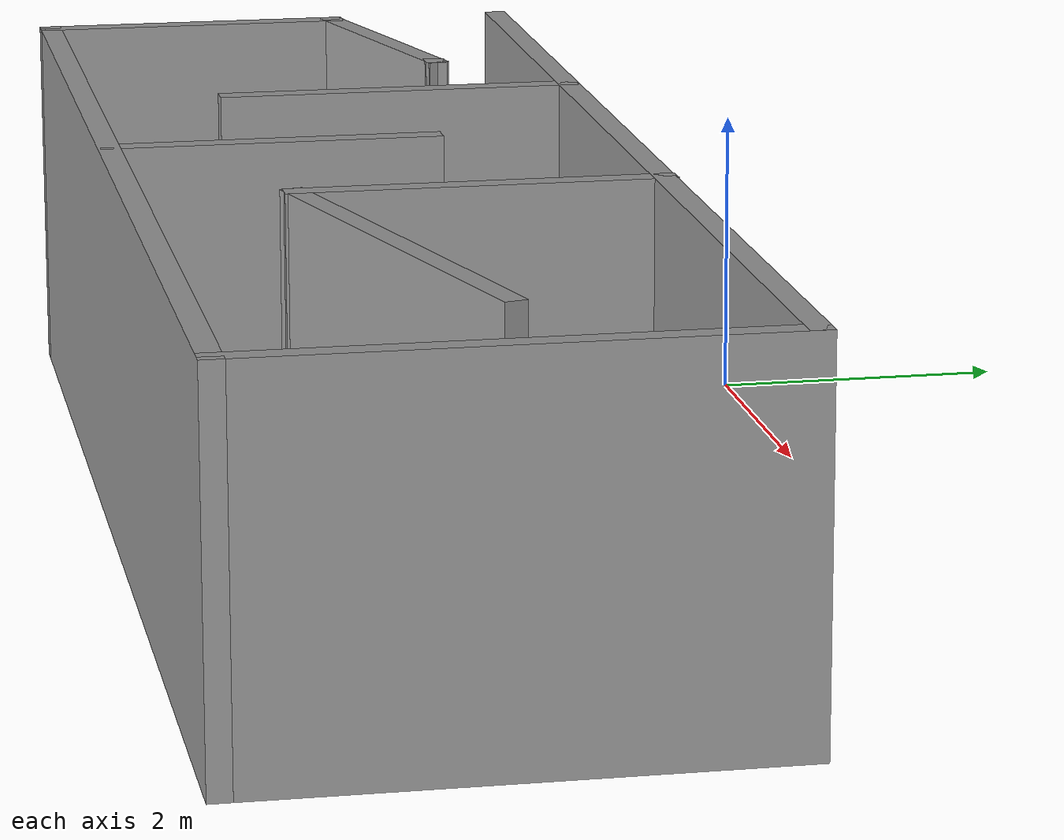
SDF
<?xml version='1.0'?>
<sdf version='1.6'>
  <model name='simple_maze'>
    <pose frame=''>3.12657 -3.05 0 0 -0 0</pose>
    <link name='Wall_0'>
      <collision name='Wall_0_Collision'>
        <geometry>
          <box>
            <size>10 0.15 2.5</size>
          </box>
        </geometry>
        <pose frame=''>0 0 1.25 0 -0 0</pose>
      </collision>
      <visual name='Wall_0_Visual'>
        <pose frame=''>0 0 1.25 0 -0 0</pose>
        <geometry>
          <box>
            <size>10 0.15 2.5</size>
          </box>
        </geometry>
        <material>
          <script>
            <uri>file://media/materials/scripts/gazebo.material</uri>
            <name>Gazebo/Grey</name>
          </script>
          <ambient>1 1 1 1</ambient>
        </material>
        <meta>
          <layer>0</layer>
        </meta>
      </visual>
      <pose frame=''>0.008428 1.67 0 0 -0 0</pose>
    </link>
    <link name='Wall_1'>
      <collision name='Wall_1_Collision'>
        <geometry>
          <box>
            <size>3.5 0.15 2.5</size>
          </box>
        </geometry>
        <pose frame=''>0 0 1.25 0 -0 0</pose>
      </collision>
      <visual name='Wall_1_Visual'>
        <pose frame=''>0 0 1.25 0 -0 0</pose>
        <geometry>
          <box>
            <size>3.5 0.15 2.5</size>
          </box>
        </geometry>
        <material>
          <script>
            <uri>file://media/materials/scripts/gazebo.material</uri>
            <name>Gazebo/Grey</name>
          </script>
          <ambient>1 1 1 1</ambient>
        </material>
        <meta>
          <layer>0</layer>
        </meta>
      </visual>
      <pose frame=''>4.93343 -0.005 0 0 -0 -1.5708</pose>
    </link>
    <link name='Wall_11'>
      <collision name='Wall_11_Collision'>
        <geometry>
          <box>
            <size>2.5 0.15 2.5</size>
          </box>
        </geometry>
        <pose frame=''>0 0 1.25 0 -0 0</pose>
      </collision>
      <visual name='Wall_11_Visual'>
        <pose frame=''>0 0 1.25 0 -0 0</pose>
        <geometry>
          <box>
            <size>2.5 0.15 2.5</size>
          </box>
        </geometry>
        <material>
          <script>
            <uri>file://media/materials/scripts/gazebo.material</uri>
            <name>Gazebo/Grey</name>
          </script>
          <ambient>1 1 1 1</ambient>
        </material>
        <meta>
          <layer>0</layer>
        </meta>
      </visual>
      <pose frame=''>0.963428 0.505 0 0 -0 -1.5708</pose>
    </link>
    <link name='Wall_12'>
      <collision name='Wall_12_Collision'>
        <geometry>
          <box>
            <size>3.25 0.15 2.5</size>
          </box>
        </geometry>
        <pose frame=''>0 0 1.25 0 -0 0</pose>
      </collision>
      <visual name='Wall_12_Visual'>
        <pose frame=''>0 0 1.25 0 -0 0</pose>
        <geometry>
          <box>
            <size>3.25 0.15 2.5</size>
          </box>
        </geometry>
        <material>
          <script>
            <uri>file://media/materials/scripts/gazebo.material</uri>
            <name>Gazebo/Grey</name>
          </script>
          <ambient>1 1 1 1</ambient>
        </material>
        <meta>
          <layer>0</layer>
        </meta>
      </visual>
      <pose frame=''>2.46061 -0.26883 0 0 -0 0.261799</pose>
    </link>
    <link name='Wall_2'>
      <collision name='Wall_2_Collision'>
        <geometry>
          <box>
            <size>10 0.15 2.5</size>
          </box>
        </geometry>
        <pose frame=''>0 0 1.25 0 -0 0</pose>
      </collision>
      <visual name='Wall_2_Visual'>
        <pose frame=''>0 0 1.25 0 -0 0</pose>
        <geometry>
          <box>
            <size>10 0.15 2.5</size>
          </box>
        </geometry>
        <material>
          <script>
            <uri>file://media/materials/scripts/gazebo.material</uri>
            <name>Gazebo/Grey</name>
          </script>
          <ambient>1 1 1 1</ambient>
        </material>
        <meta>
          <layer>0</layer>
        </meta>
      </visual>
      <pose frame=''>0.008428 -1.68 0 0 -0 3.14159</pose>
    </link>
    <link name='Wall_3'>
      <collision name='Wall_3_Collision'>
        <geometry>
          <box>
            <size>2.25 0.15 2.5</size>
          </box>
        </geometry>
        <pose frame=''>0 0 1.25 0 -0 0</pose>
      </collision>
      <visual name='Wall_3_Visual'>
        <pose frame=''>0 0 1.25 0 -0 0</pose>
        <geometry>
          <box>
            <size>2.25 0.15 2.5</size>
          </box>
        </geometry>
        <material>
          <script>
            <uri>file://media/materials/scripts/gazebo.material</uri>
            <name>Gazebo/Grey</name>
          </script>
          <ambient>1 1 1 1</ambient>
        </material>
        <meta>
          <layer>0</layer>
        </meta>
      </visual>
      <pose frame=''>-4.91657 -0.63 0 0 -0 1.5708</pose>
    </link>
    <link name='Wall_4'>
      <collision name='Wall_4_Collision'>
        <geometry>
          <box>
            <size>2 0.15 2.5</size>
          </box>
        </geometry>
        <pose frame=''>0 0 1.25 0 -0 0</pose>
      </collision>
      <visual name='Wall_4_Visual'>
        <pose frame=''>0 0 1.25 0 -0 0</pose>
        <geometry>
          <box>
            <size>2 0.15 2.5</size>
          </box>
        </geometry>
        <material>
          <script>
            <uri>file://media/materials/scripts/gazebo.material</uri>
            <name>Gazebo/Grey</name>
          </script>
          <ambient>1 1 1 1</ambient>
        </material>
        <meta>
          <layer>0</layer>
        </meta>
      </visual>
      <pose frame=''>-4.02309 0.659408 0 0 -0 0.261799</pose>
    </link>
    <link name='Wall_5'>
      <collision name='Wall_5_Collision'>
        <geometry>
          <box>
            <size>0.15 0.15 2.5</size>
          </box>
        </geometry>
        <pose frame=''>0 0 1.25 0 -0 0</pose>
      </collision>
      <visual name='Wall_5_Visual'>
        <pose frame=''>0 0 1.25 0 -0 0</pose>
        <geometry>
          <box>
            <size>0.15 0.15 2.5</size>
          </box>
        </geometry>
        <material>
          <script>
            <uri>file://media/materials/scripts/gazebo.material</uri>
            <name>Gazebo/Grey</name>
          </script>
          <ambient>1 1 1 1</ambient>
        </material>
        <meta>
          <layer>0</layer>
        </meta>
      </visual>
      <pose frame=''>-3.12961 0.898815 0 0 -0 0</pose>
    </link>
    <link name='Wall_7'>
      <collision name='Wall_7_Collision'>
        <geometry>
          <box>
            <size>2.5 0.15 2.5</size>
          </box>
        </geometry>
        <pose frame=''>0 0 1.25 0 -0 0</pose>
      </collision>
      <visual name='Wall_7_Visual'>
        <pose frame=''>0 0 1.25 0 -0 0</pose>
        <geometry>
          <box>
            <size>2.5 0.15 2.5</size>
          </box>
        </geometry>
        <material>
          <script>
            <uri>file://media/materials/scripts/gazebo.material</uri>
            <name>Gazebo/Grey</name>
          </script>
          <ambient>1 1 1 1</ambient>
        </material>
        <meta>
          <layer>0</layer>
        </meta>
      </visual>
      <pose frame=''>-2.14657 0.485 0 0 -0 -1.5708</pose>
    </link>
    <link name='Wall_9'>
      <collision name='Wall_9_Collision'>
        <geometry>
          <box>
            <size>2.25 0.15 2.5</size>
          </box>
        </geometry>
        <pose frame=''>0 0 1.25 0 -0 0</pose>
      </collision>
      <visual name='Wall_9_Visual'>
        <pose frame=''>0 0 1.25 0 -0 0</pose>
        <geometry>
          <box>
            <size>2.25 0.15 2.5</size>
          </box>
        </geometry>
        <material>
          <script>
            <uri>file://media/materials/scripts/gazebo.material</uri>
            <name>Gazebo/Grey</name>
          </script>
          <ambient>1 1 1 1</ambient>
        </material>
        <meta>
          <layer>0</layer>
        </meta>
      </visual>
      <pose frame=''>-0.586572 -0.61 0 0 -0 1.5708</pose>
    </link>
    <static>1</static>
  </model>
</sdf>
